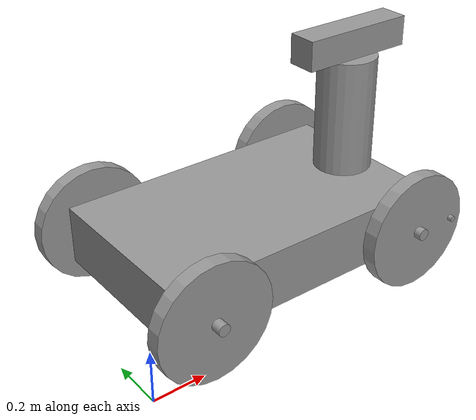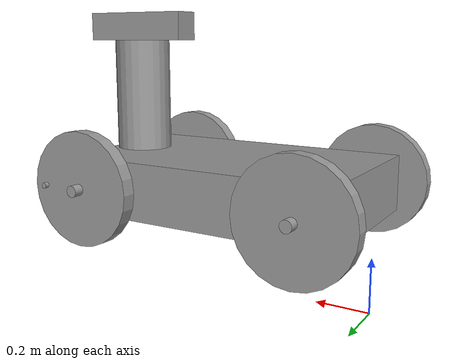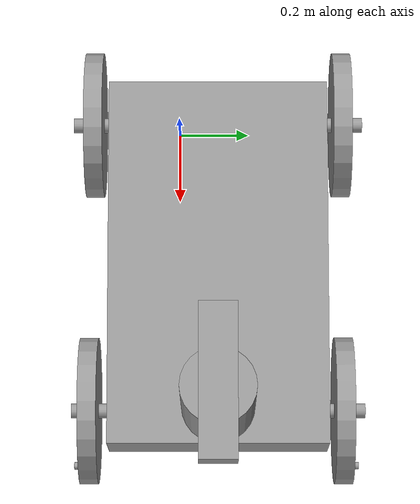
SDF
<?xml version='1.0'?>
<sdf version='1.6'>
  <model name='wheel_2x2'>
    <link name='link_0'>
      <inertial>
        <mass>10</mass>
        <inertia>
          <ixx>0.333333</ixx>
          <ixy>0</ixy>
          <ixz>0</ixz>
          <iyy>0.866667</iyy>
          <iyz>0</iyz>
          <izz>1.13333</izz>
        </inertia>
        <pose frame=''>0 0 0 0 -0 0</pose>
      </inertial>
      <pose frame=''>0.477804 0.110504 0.430964 0 -0 0</pose>
      <gravity>1</gravity>
      <self_collide>0</self_collide>
      <kinematic>0</kinematic>
      <enable_wind>0</enable_wind>
      <visual name='visual'>
        <pose frame=''>0 0 0 0 -0 0</pose>
        <geometry>
          <box>
            <size>1 0.6 0.2</size>
          </box>
        </geometry>
        <material>
          <lighting>1</lighting>
          <script>
            <uri>file://media/materials/scripts/gazebo.material</uri>
            <name>Gazebo/Grey</name>
          </script>
          <shader type='vertex'>
            <normal_map>__default__</normal_map>
          </shader>
          <ambient>0.3 0.3 0.3 1</ambient>
          <diffuse>0.7 0.7 0.7 1</diffuse>
          <specular>0.01 0.01 0.01 1</specular>
          <emissive>0 0 0 1</emissive>
        </material>
        <transparency>0</transparency>
        <cast_shadows>1</cast_shadows>
      </visual>
      <collision name='collision'>
        <laser_retro>0</laser_retro>
        <max_contacts>10</max_contacts>
        <pose frame=''>0 0 0 0 -0 0</pose>
        <geometry>
          <box>
            <size>1 0.6 0.2</size>
          </box>
        </geometry>
        <surface>
          <friction>
            <ode>
              <mu>1</mu>
              <mu2>1</mu2>
              <fdir1>0 0 0</fdir1>
              <slip1>0</slip1>
              <slip2>0</slip2>
            </ode>
            <torsional>
              <coefficient>1</coefficient>
              <patch_radius>0</patch_radius>
              <surface_radius>0</surface_radius>
              <use_patch_radius>1</use_patch_radius>
              <ode>
                <slip>0</slip>
              </ode>
            </torsional>
          </friction>
          <bounce>
            <restitution_coefficient>0</restitution_coefficient>
            <threshold>1e+06</threshold>
          </bounce>
          <contact>
            <collide_without_contact>0</collide_without_contact>
            <collide_without_contact_bitmask>1</collide_without_contact_bitmask>
            <collide_bitmask>1</collide_bitmask>
            <ode>
              <soft_cfm>0</soft_cfm>
              <soft_erp>0.2</soft_erp>
              <kp>1e+13</kp>
              <kd>1</kd>
              <max_vel>0.01</max_vel>
              <min_depth>0</min_depth>
            </ode>
            <bullet>
              <split_impulse>1</split_impulse>
              <split_impulse_penetration_threshold>-0.01</split_impulse_penetration_threshold>
              <soft_cfm>0</soft_cfm>
              <soft_erp>0.2</soft_erp>
              <kp>1e+13</kp>
              <kd>1</kd>
            </bullet>
          </contact>
        </surface>
      </collision>
    </link>
    <link name='link_2'>
      <inertial>
        <mass>1</mass>
        <inertia>
          <ixx>0.145833</ixx>
          <ixy>0</ixy>
          <ixz>0</ixz>
          <iyy>0.145833</iyy>
          <iyz>0</iyz>
          <izz>0.125</izz>
        </inertia>
        <pose frame=''>0 0 0 0 -0 0</pose>
      </inertial>
      <pose frame=''>0.877804 0.110504 0.730964 0 -0 0</pose>
      <gravity>1</gravity>
      <self_collide>0</self_collide>
      <kinematic>0</kinematic>
      <enable_wind>0</enable_wind>
      <visual name='visual'>
        <pose frame=''>0 0 0 0 -0 0</pose>
        <geometry>
          <cylinder>
            <radius>0.1</radius>
            <length>0.4</length>
          </cylinder>
        </geometry>
        <material>
          <lighting>1</lighting>
          <script>
            <uri>file://media/materials/scripts/gazebo.material</uri>
            <name>Gazebo/Grey</name>
          </script>
          <shader type='vertex'>
            <normal_map>__default__</normal_map>
          </shader>
          <ambient>0.3 0.3 0.3 1</ambient>
          <diffuse>0.7 0.7 0.7 1</diffuse>
          <specular>0.01 0.01 0.01 1</specular>
          <emissive>0 0 0 1</emissive>
        </material>
        <transparency>0</transparency>
        <cast_shadows>1</cast_shadows>
      </visual>
      <collision name='collision'>
        <laser_retro>0</laser_retro>
        <max_contacts>10</max_contacts>
        <pose frame=''>0 0 0 0 -0 0</pose>
        <geometry>
          <cylinder>
            <radius>0.1</radius>
            <length>0.4</length>
          </cylinder>
        </geometry>
        <surface>
          <friction>
            <ode>
              <mu>1</mu>
              <mu2>1</mu2>
              <fdir1>0 0 0</fdir1>
              <slip1>0</slip1>
              <slip2>0</slip2>
            </ode>
            <torsional>
              <coefficient>1</coefficient>
              <patch_radius>0</patch_radius>
              <surface_radius>0</surface_radius>
              <use_patch_radius>1</use_patch_radius>
              <ode>
                <slip>0</slip>
              </ode>
            </torsional>
          </friction>
          <bounce>
            <restitution_coefficient>0</restitution_coefficient>
            <threshold>1e+06</threshold>
          </bounce>
          <contact>
            <collide_without_contact>0</collide_without_contact>
            <collide_without_contact_bitmask>1</collide_without_contact_bitmask>
            <collide_bitmask>1</collide_bitmask>
            <ode>
              <soft_cfm>0</soft_cfm>
              <soft_erp>0.2</soft_erp>
              <kp>1e+13</kp>
              <kd>1</kd>
              <max_vel>0.01</max_vel>
              <min_depth>0</min_depth>
            </ode>
            <bullet>
              <split_impulse>1</split_impulse>
              <split_impulse_penetration_threshold>-0.01</split_impulse_penetration_threshold>
              <soft_cfm>0</soft_cfm>
              <soft_erp>0.2</soft_erp>
              <kp>1e+13</kp>
              <kd>1</kd>
            </bullet>
          </contact>
        </surface>
      </collision>
    </link>
    <link name='link_3'>
      <inertial>
        <mass>0.2</mass>
        <inertia>
          <ixx>0.00033333</ixx>
          <ixy>0</ixy>
          <ixz>0</ixz>
          <iyy>0.00283333</iyy>
          <iyz>0</iyz>
          <izz>0.00283333</izz>
        </inertia>
        <pose frame=''>0 0 0 0 -0 0</pose>
      </inertial>
      <pose frame=''>0.877804 0.110504 0.980964 0 -0 0</pose>
      <gravity>1</gravity>
      <self_collide>0</self_collide>
      <kinematic>0</kinematic>
      <enable_wind>0</enable_wind>
      <visual name='visual'>
        <pose frame=''>0 0 0 0 -0 0</pose>
        <geometry>
          <box>
            <size>0.4 0.1 0.1</size>
          </box>
        </geometry>
        <material>
          <lighting>1</lighting>
          <script>
            <uri>file://media/materials/scripts/gazebo.material</uri>
            <name>Gazebo/Grey</name>
          </script>
          <shader type='vertex'>
            <normal_map>__default__</normal_map>
          </shader>
          <ambient>0.3 0.3 0.3 1</ambient>
          <diffuse>0.7 0.7 0.7 1</diffuse>
          <specular>0.01 0.01 0.01 1</specular>
          <emissive>0 0 0 1</emissive>
        </material>
        <transparency>0</transparency>
        <cast_shadows>1</cast_shadows>
      </visual>
      <collision name='collision'>
        <laser_retro>0</laser_retro>
        <max_contacts>10</max_contacts>
        <pose frame=''>0 0 0 0 -0 0</pose>
        <geometry>
          <box>
            <size>0.4 0.1 0.1</size>
          </box>
        </geometry>
        <surface>
          <friction>
            <ode>
              <mu>1</mu>
              <mu2>1</mu2>
              <fdir1>0 0 0</fdir1>
              <slip1>0</slip1>
              <slip2>0</slip2>
            </ode>
            <torsional>
              <coefficient>1</coefficient>
              <patch_radius>0</patch_radius>
              <surface_radius>0</surface_radius>
              <use_patch_radius>1</use_patch_radius>
              <ode>
                <slip>0</slip>
              </ode>
            </torsional>
          </friction>
          <bounce>
            <restitution_coefficient>0</restitution_coefficient>
            <threshold>1e+06</threshold>
          </bounce>
          <contact>
            <collide_without_contact>0</collide_without_contact>
            <collide_without_contact_bitmask>1</collide_without_contact_bitmask>
            <collide_bitmask>1</collide_bitmask>
            <ode>
              <soft_cfm>0</soft_cfm>
              <soft_erp>0.2</soft_erp>
              <kp>1e+13</kp>
              <kd>1</kd>
              <max_vel>0.01</max_vel>
              <min_depth>0</min_depth>
            </ode>
            <bullet>
              <split_impulse>1</split_impulse>
              <split_impulse_penetration_threshold>-0.01</split_impulse_penetration_threshold>
              <soft_cfm>0</soft_cfm>
              <soft_erp>0.2</soft_erp>
              <kp>1e+13</kp>
              <kd>1</kd>
            </bullet>
          </contact>
        </surface>
      </collision>
    </link>
    <link name='link_4'>
      <inertial>
        <mass>0.1</mass>
        <inertia>
          <ixx>0.00034333</ixx>
          <ixy>0</ixy>
          <ixz>0</ixz>
          <iyy>0.00034333</iyy>
          <iyz>0</iyz>
          <izz>2e-05</izz>
        </inertia>
        <pose frame=''>0 0 0 0 -0 0</pose>
      </inertial>
      <pose frame=''>0.877804 -0.189495 0.430964 1.5708 -0 0</pose>
      <gravity>1</gravity>
      <self_collide>0</self_collide>
      <kinematic>0</kinematic>
      <enable_wind>0</enable_wind>
      <visual name='visual'>
        <pose frame=''>0 0 0 0 -0 0</pose>
        <geometry>
          <cylinder>
            <radius>0.02</radius>
            <length>0.2</length>
          </cylinder>
        </geometry>
        <material>
          <lighting>1</lighting>
          <script>
            <uri>file://media/materials/scripts/gazebo.material</uri>
            <name>Gazebo/Grey</name>
          </script>
          <shader type='vertex'>
            <normal_map>__default__</normal_map>
          </shader>
          <ambient>0.3 0.3 0.3 1</ambient>
          <diffuse>0.7 0.7 0.7 1</diffuse>
          <specular>0.01 0.01 0.01 1</specular>
          <emissive>0 0 0 1</emissive>
        </material>
        <transparency>0</transparency>
        <cast_shadows>1</cast_shadows>
      </visual>
      <collision name='collision'>
        <laser_retro>0</laser_retro>
        <max_contacts>10</max_contacts>
        <pose frame=''>0 0 0 0 -0 0</pose>
        <geometry>
          <cylinder>
            <radius>0.02</radius>
            <length>0.2</length>
          </cylinder>
        </geometry>
        <surface>
          <friction>
            <ode>
              <mu>1</mu>
              <mu2>1</mu2>
              <fdir1>0 0 0</fdir1>
              <slip1>0</slip1>
              <slip2>0</slip2>
            </ode>
            <torsional>
              <coefficient>1</coefficient>
              <patch_radius>0</patch_radius>
              <surface_radius>0</surface_radius>
              <use_patch_radius>1</use_patch_radius>
              <ode>
                <slip>0</slip>
              </ode>
            </torsional>
          </friction>
          <bounce>
            <restitution_coefficient>0</restitution_coefficient>
            <threshold>1e+06</threshold>
          </bounce>
          <contact>
            <collide_without_contact>0</collide_without_contact>
            <collide_without_contact_bitmask>1</collide_without_contact_bitmask>
            <collide_bitmask>1</collide_bitmask>
            <ode>
              <soft_cfm>0</soft_cfm>
              <soft_erp>0.2</soft_erp>
              <kp>1e+13</kp>
              <kd>1</kd>
              <max_vel>0.01</max_vel>
              <min_depth>0</min_depth>
            </ode>
            <bullet>
              <split_impulse>1</split_impulse>
              <split_impulse_penetration_threshold>-0.01</split_impulse_penetration_threshold>
              <soft_cfm>0</soft_cfm>
              <soft_erp>0.2</soft_erp>
              <kp>1e+13</kp>
              <kd>1</kd>
            </bullet>
          </contact>
        </surface>
      </collision>
    </link>
    <link name='link_4_clone'>
      <inertial>
        <mass>0.1</mass>
        <inertia>
          <ixx>0.00034333</ixx>
          <ixy>0</ixy>
          <ixz>0</ixz>
          <iyy>0.00034333</iyy>
          <iyz>0</iyz>
          <izz>2e-05</izz>
        </inertia>
        <pose frame=''>0 0 0 0 -0 0</pose>
      </inertial>
      <pose frame=''>0.877804 0.410504 0.430964 -1.5708 0 0</pose>
      <gravity>1</gravity>
      <self_collide>0</self_collide>
      <kinematic>0</kinematic>
      <enable_wind>0</enable_wind>
      <visual name='visual'>
        <pose frame=''>0 0 0 0 -0 0</pose>
        <geometry>
          <cylinder>
            <radius>0.02</radius>
            <length>0.2</length>
          </cylinder>
        </geometry>
        <material>
          <lighting>1</lighting>
          <script>
            <uri>file://media/materials/scripts/gazebo.material</uri>
            <name>Gazebo/Grey</name>
          </script>
          <shader type='vertex'>
            <normal_map>__default__</normal_map>
          </shader>
          <ambient>0.3 0.3 0.3 1</ambient>
          <diffuse>0.7 0.7 0.7 1</diffuse>
          <specular>0.01 0.01 0.01 1</specular>
          <emissive>0 0 0 1</emissive>
        </material>
        <transparency>0</transparency>
        <cast_shadows>1</cast_shadows>
      </visual>
      <collision name='collision'>
        <laser_retro>0</laser_retro>
        <max_contacts>10</max_contacts>
        <pose frame=''>0 0 0 0 -0 0</pose>
        <geometry>
          <cylinder>
            <radius>0.02</radius>
            <length>0.2</length>
          </cylinder>
        </geometry>
        <surface>
          <friction>
            <ode>
              <mu>1</mu>
              <mu2>1</mu2>
              <fdir1>0 0 0</fdir1>
              <slip1>0</slip1>
              <slip2>0</slip2>
            </ode>
            <torsional>
              <coefficient>1</coefficient>
              <patch_radius>0</patch_radius>
              <surface_radius>0</surface_radius>
              <use_patch_radius>1</use_patch_radius>
              <ode>
                <slip>0</slip>
              </ode>
            </torsional>
          </friction>
          <bounce>
            <restitution_coefficient>0</restitution_coefficient>
            <threshold>1e+06</threshold>
          </bounce>
          <contact>
            <collide_without_contact>0</collide_without_contact>
            <collide_without_contact_bitmask>1</collide_without_contact_bitmask>
            <collide_bitmask>1</collide_bitmask>
            <ode>
              <soft_cfm>0</soft_cfm>
              <soft_erp>0.2</soft_erp>
              <kp>1e+13</kp>
              <kd>1</kd>
              <max_vel>0.01</max_vel>
              <min_depth>0</min_depth>
            </ode>
            <bullet>
              <split_impulse>1</split_impulse>
              <split_impulse_penetration_threshold>-0.01</split_impulse_penetration_threshold>
              <soft_cfm>0</soft_cfm>
              <soft_erp>0.2</soft_erp>
              <kp>1e+13</kp>
              <kd>1</kd>
            </bullet>
          </contact>
        </surface>
      </collision>
    </link>
    <link name='link_4_clone_0'>
      <inertial>
        <mass>0.1</mass>
        <inertia>
          <ixx>0.00034333</ixx>
          <ixy>0</ixy>
          <ixz>0</ixz>
          <iyy>0.00034333</iyy>
          <iyz>0</iyz>
          <izz>2e-05</izz>
        </inertia>
        <pose frame=''>0 0 0 0 -0 0</pose>
      </inertial>
      <pose frame=''>0.077804 -0.189496 0.430964 1.5708 -0 0</pose>
      <gravity>1</gravity>
      <self_collide>0</self_collide>
      <kinematic>0</kinematic>
      <enable_wind>0</enable_wind>
      <visual name='visual'>
        <pose frame=''>0 0 0 0 -0 0</pose>
        <geometry>
          <cylinder>
            <radius>0.02</radius>
            <length>0.2</length>
          </cylinder>
        </geometry>
        <material>
          <lighting>1</lighting>
          <script>
            <uri>file://media/materials/scripts/gazebo.material</uri>
            <name>Gazebo/Grey</name>
          </script>
          <shader type='vertex'>
            <normal_map>__default__</normal_map>
          </shader>
          <ambient>0.3 0.3 0.3 1</ambient>
          <diffuse>0.7 0.7 0.7 1</diffuse>
          <specular>0.01 0.01 0.01 1</specular>
          <emissive>0 0 0 1</emissive>
        </material>
        <transparency>0</transparency>
        <cast_shadows>1</cast_shadows>
      </visual>
      <collision name='collision'>
        <laser_retro>0</laser_retro>
        <max_contacts>10</max_contacts>
        <pose frame=''>0 0 0 0 -0 0</pose>
        <geometry>
          <cylinder>
            <radius>0.02</radius>
            <length>0.2</length>
          </cylinder>
        </geometry>
        <surface>
          <friction>
            <ode>
              <mu>1</mu>
              <mu2>1</mu2>
              <fdir1>0 0 0</fdir1>
              <slip1>0</slip1>
              <slip2>0</slip2>
            </ode>
            <torsional>
              <coefficient>1</coefficient>
              <patch_radius>0</patch_radius>
              <surface_radius>0</surface_radius>
              <use_patch_radius>1</use_patch_radius>
              <ode>
                <slip>0</slip>
              </ode>
            </torsional>
          </friction>
          <bounce>
            <restitution_coefficient>0</restitution_coefficient>
            <threshold>1e+06</threshold>
          </bounce>
          <contact>
            <collide_without_contact>0</collide_without_contact>
            <collide_without_contact_bitmask>1</collide_without_contact_bitmask>
            <collide_bitmask>1</collide_bitmask>
            <ode>
              <soft_cfm>0</soft_cfm>
              <soft_erp>0.2</soft_erp>
              <kp>1e+13</kp>
              <kd>1</kd>
              <max_vel>0.01</max_vel>
              <min_depth>0</min_depth>
            </ode>
            <bullet>
              <split_impulse>1</split_impulse>
              <split_impulse_penetration_threshold>-0.01</split_impulse_penetration_threshold>
              <soft_cfm>0</soft_cfm>
              <soft_erp>0.2</soft_erp>
              <kp>1e+13</kp>
              <kd>1</kd>
            </bullet>
          </contact>
        </surface>
      </collision>
    </link>
    <link name='link_4_clone_clone'>
      <inertial>
        <mass>0.1</mass>
        <inertia>
          <ixx>0.00034333</ixx>
          <ixy>0</ixy>
          <ixz>0</ixz>
          <iyy>0.00034333</iyy>
          <iyz>0</iyz>
          <izz>2e-05</izz>
        </inertia>
        <pose frame=''>0 0 0 0 -0 0</pose>
      </inertial>
      <pose frame=''>0.077804 0.410504 0.430964 -1.5708 0 0</pose>
      <gravity>1</gravity>
      <self_collide>0</self_collide>
      <kinematic>0</kinematic>
      <enable_wind>0</enable_wind>
      <visual name='visual'>
        <pose frame=''>0 0 0 0 -0 0</pose>
        <geometry>
          <cylinder>
            <radius>0.02</radius>
            <length>0.2</length>
          </cylinder>
        </geometry>
        <material>
          <lighting>1</lighting>
          <script>
            <uri>file://media/materials/scripts/gazebo.material</uri>
            <name>Gazebo/Grey</name>
          </script>
          <shader type='vertex'>
            <normal_map>__default__</normal_map>
          </shader>
          <ambient>0.3 0.3 0.3 1</ambient>
          <diffuse>0.7 0.7 0.7 1</diffuse>
          <specular>0.01 0.01 0.01 1</specular>
          <emissive>0 0 0 1</emissive>
        </material>
        <transparency>0</transparency>
        <cast_shadows>1</cast_shadows>
      </visual>
      <collision name='collision'>
        <laser_retro>0</laser_retro>
        <max_contacts>10</max_contacts>
        <pose frame=''>0 0 0 0 -0 0</pose>
        <geometry>
          <cylinder>
            <radius>0.02</radius>
            <length>0.2</length>
          </cylinder>
        </geometry>
        <surface>
          <friction>
            <ode>
              <mu>1</mu>
              <mu2>1</mu2>
              <fdir1>0 0 0</fdir1>
              <slip1>0</slip1>
              <slip2>0</slip2>
            </ode>
            <torsional>
              <coefficient>1</coefficient>
              <patch_radius>0</patch_radius>
              <surface_radius>0</surface_radius>
              <use_patch_radius>1</use_patch_radius>
              <ode>
                <slip>0</slip>
              </ode>
            </torsional>
          </friction>
          <bounce>
            <restitution_coefficient>0</restitution_coefficient>
            <threshold>1e+06</threshold>
          </bounce>
          <contact>
            <collide_without_contact>0</collide_without_contact>
            <collide_without_contact_bitmask>1</collide_without_contact_bitmask>
            <collide_bitmask>1</collide_bitmask>
            <ode>
              <soft_cfm>0</soft_cfm>
              <soft_erp>0.2</soft_erp>
              <kp>1e+13</kp>
              <kd>1</kd>
              <max_vel>0.01</max_vel>
              <min_depth>0</min_depth>
            </ode>
            <bullet>
              <split_impulse>1</split_impulse>
              <split_impulse_penetration_threshold>-0.01</split_impulse_penetration_threshold>
              <soft_cfm>0</soft_cfm>
              <soft_erp>0.2</soft_erp>
              <kp>1e+13</kp>
              <kd>1</kd>
            </bullet>
          </contact>
        </surface>
      </collision>
    </link>
    <link name='link_5'>
      <inertial>
        <mass>0.5</mass>
        <inertia>
          <ixx>0.00510417</ixx>
          <ixy>0</ixy>
          <ixz>0</ixz>
          <iyy>0.00510417</iyy>
          <iyz>0</iyz>
          <izz>0.01</izz>
        </inertia>
        <pose frame=''>0 0 0 0 -0 0</pose>
      </inertial>
      <pose frame=''>0.877804 -0.239495 0.430964 1.5708 -0 0</pose>
      <gravity>1</gravity>
      <self_collide>0</self_collide>
      <kinematic>0</kinematic>
      <enable_wind>0</enable_wind>
      <visual name='visual'>
        <pose frame=''>0 0 0 0 -0 0</pose>
        <geometry>
          <cylinder>
            <radius>0.2</radius>
            <length>0.05</length>
          </cylinder>
        </geometry>
        <material>
          <lighting>1</lighting>
          <script>
            <uri>file://media/materials/scripts/gazebo.material</uri>
            <name>Gazebo/Grey</name>
          </script>
          <shader type='vertex'>
            <normal_map>__default__</normal_map>
          </shader>
          <ambient>0.3 0.3 0.3 1</ambient>
          <diffuse>0.7 0.7 0.7 1</diffuse>
          <specular>0.01 0.01 0.01 1</specular>
          <emissive>0 0 0 1</emissive>
        </material>
        <transparency>0</transparency>
        <cast_shadows>1</cast_shadows>
      </visual>
      <collision name='collision'>
        <laser_retro>0</laser_retro>
        <max_contacts>10</max_contacts>
        <pose frame=''>0 0 0 0 -0 0</pose>
        <geometry>
          <cylinder>
            <radius>0.2</radius>
            <length>0.05</length>
          </cylinder>
        </geometry>
        <surface>
          <friction>
            <ode>
              <mu>1</mu>
              <mu2>1</mu2>
              <fdir1>0 0 0</fdir1>
              <slip1>0</slip1>
              <slip2>0</slip2>
            </ode>
            <torsional>
              <coefficient>1</coefficient>
              <patch_radius>0</patch_radius>
              <surface_radius>0</surface_radius>
              <use_patch_radius>1</use_patch_radius>
              <ode>
                <slip>0</slip>
              </ode>
            </torsional>
          </friction>
          <bounce>
            <restitution_coefficient>0</restitution_coefficient>
            <threshold>1e+06</threshold>
          </bounce>
          <contact>
            <collide_without_contact>0</collide_without_contact>
            <collide_without_contact_bitmask>1</collide_without_contact_bitmask>
            <collide_bitmask>1</collide_bitmask>
            <ode>
              <soft_cfm>0</soft_cfm>
              <soft_erp>0.2</soft_erp>
              <kp>1e+13</kp>
              <kd>1</kd>
              <max_vel>0.01</max_vel>
              <min_depth>0</min_depth>
            </ode>
            <bullet>
              <split_impulse>1</split_impulse>
              <split_impulse_penetration_threshold>-0.01</split_impulse_penetration_threshold>
              <soft_cfm>0</soft_cfm>
              <soft_erp>0.2</soft_erp>
              <kp>1e+13</kp>
              <kd>1</kd>
            </bullet>
          </contact>
        </surface>
      </collision>
    </link>
    <link name='link_5_clone'>
      <inertial>
        <mass>0.5</mass>
        <inertia>
          <ixx>0.00510417</ixx>
          <ixy>0</ixy>
          <ixz>0</ixz>
          <iyy>0.00510417</iyy>
          <iyz>0</iyz>
          <izz>0.01</izz>
        </inertia>
        <pose frame=''>0 0 0 0 -0 0</pose>
      </inertial>
      <pose frame=''>0.077804 -0.229496 0.430964 1.5708 -0 0</pose>
      <gravity>1</gravity>
      <self_collide>0</self_collide>
      <kinematic>0</kinematic>
      <enable_wind>0</enable_wind>
      <visual name='visual'>
        <pose frame=''>0 0 0 0 -0 0</pose>
        <geometry>
          <cylinder>
            <radius>0.2</radius>
            <length>0.05</length>
          </cylinder>
        </geometry>
        <material>
          <lighting>1</lighting>
          <script>
            <uri>file://media/materials/scripts/gazebo.material</uri>
            <name>Gazebo/Grey</name>
          </script>
          <shader type='vertex'>
            <normal_map>__default__</normal_map>
          </shader>
          <ambient>0.3 0.3 0.3 1</ambient>
          <diffuse>0.7 0.7 0.7 1</diffuse>
          <specular>0.01 0.01 0.01 1</specular>
          <emissive>0 0 0 1</emissive>
        </material>
        <transparency>0</transparency>
        <cast_shadows>1</cast_shadows>
      </visual>
      <collision name='collision'>
        <laser_retro>0</laser_retro>
        <max_contacts>10</max_contacts>
        <pose frame=''>0 0 0 0 -0 0</pose>
        <geometry>
          <cylinder>
            <radius>0.2</radius>
            <length>0.05</length>
          </cylinder>
        </geometry>
        <surface>
          <friction>
            <ode>
              <mu>1</mu>
              <mu2>1</mu2>
              <fdir1>0 0 0</fdir1>
              <slip1>0</slip1>
              <slip2>0</slip2>
            </ode>
            <torsional>
              <coefficient>1</coefficient>
              <patch_radius>0</patch_radius>
              <surface_radius>0</surface_radius>
              <use_patch_radius>1</use_patch_radius>
              <ode>
                <slip>0</slip>
              </ode>
            </torsional>
          </friction>
          <bounce>
            <restitution_coefficient>0</restitution_coefficient>
            <threshold>1e+06</threshold>
          </bounce>
          <contact>
            <collide_without_contact>0</collide_without_contact>
            <collide_without_contact_bitmask>1</collide_without_contact_bitmask>
            <collide_bitmask>1</collide_bitmask>
            <ode>
              <soft_cfm>0</soft_cfm>
              <soft_erp>0.2</soft_erp>
              <kp>1e+13</kp>
              <kd>1</kd>
              <max_vel>0.01</max_vel>
              <min_depth>0</min_depth>
            </ode>
            <bullet>
              <split_impulse>1</split_impulse>
              <split_impulse_penetration_threshold>-0.01</split_impulse_penetration_threshold>
              <soft_cfm>0</soft_cfm>
              <soft_erp>0.2</soft_erp>
              <kp>1e+13</kp>
              <kd>1</kd>
            </bullet>
          </contact>
        </surface>
      </collision>
    </link>
    <link name='link_5_clone_0'>
      <inertial>
        <mass>0.5</mass>
        <inertia>
          <ixx>0.00510417</ixx>
          <ixy>0</ixy>
          <ixz>0</ixz>
          <iyy>0.00510417</iyy>
          <iyz>0</iyz>
          <izz>0.01</izz>
        </inertia>
        <pose frame=''>0 0 0 0 -0 0</pose>
      </inertial>
      <pose frame=''>0.877804 0.450504 0.430964 -1.5708 0 0</pose>
      <gravity>1</gravity>
      <self_collide>0</self_collide>
      <kinematic>0</kinematic>
      <enable_wind>0</enable_wind>
      <visual name='visual'>
        <pose frame=''>0 0 0 0 -0 0</pose>
        <geometry>
          <cylinder>
            <radius>0.2</radius>
            <length>0.05</length>
          </cylinder>
        </geometry>
        <material>
          <lighting>1</lighting>
          <script>
            <uri>file://media/materials/scripts/gazebo.material</uri>
            <name>Gazebo/Grey</name>
          </script>
          <shader type='vertex'>
            <normal_map>__default__</normal_map>
          </shader>
          <ambient>0.3 0.3 0.3 1</ambient>
          <diffuse>0.7 0.7 0.7 1</diffuse>
          <specular>0.01 0.01 0.01 1</specular>
          <emissive>0 0 0 1</emissive>
        </material>
        <transparency>0</transparency>
        <cast_shadows>1</cast_shadows>
      </visual>
      <collision name='collision'>
        <laser_retro>0</laser_retro>
        <max_contacts>10</max_contacts>
        <pose frame=''>0 0 0 0 -0 0</pose>
        <geometry>
          <cylinder>
            <radius>0.2</radius>
            <length>0.05</length>
          </cylinder>
        </geometry>
        <surface>
          <friction>
            <ode>
              <mu>1</mu>
              <mu2>1</mu2>
              <fdir1>0 0 0</fdir1>
              <slip1>0</slip1>
              <slip2>0</slip2>
            </ode>
            <torsional>
              <coefficient>1</coefficient>
              <patch_radius>0</patch_radius>
              <surface_radius>0</surface_radius>
              <use_patch_radius>1</use_patch_radius>
              <ode>
                <slip>0</slip>
              </ode>
            </torsional>
          </friction>
          <bounce>
            <restitution_coefficient>0</restitution_coefficient>
            <threshold>1e+06</threshold>
          </bounce>
          <contact>
            <collide_without_contact>0</collide_without_contact>
            <collide_without_contact_bitmask>1</collide_without_contact_bitmask>
            <collide_bitmask>1</collide_bitmask>
            <ode>
              <soft_cfm>0</soft_cfm>
              <soft_erp>0.2</soft_erp>
              <kp>1e+13</kp>
              <kd>1</kd>
              <max_vel>0.01</max_vel>
              <min_depth>0</min_depth>
            </ode>
            <bullet>
              <split_impulse>1</split_impulse>
              <split_impulse_penetration_threshold>-0.01</split_impulse_penetration_threshold>
              <soft_cfm>0</soft_cfm>
              <soft_erp>0.2</soft_erp>
              <kp>1e+13</kp>
              <kd>1</kd>
            </bullet>
          </contact>
        </surface>
      </collision>
    </link>
    <link name='link_5_clone_0_clone'>
      <inertial>
        <mass>0.5</mass>
        <inertia>
          <ixx>0.00510417</ixx>
          <ixy>0</ixy>
          <ixz>0</ixz>
          <iyy>0.00510417</iyy>
          <iyz>0</iyz>
          <izz>0.01</izz>
        </inertia>
        <pose frame=''>0 0 0 0 -0 0</pose>
      </inertial>
      <pose frame=''>0.077804 0.450504 0.430964 -1.5708 0 0</pose>
      <gravity>1</gravity>
      <self_collide>0</self_collide>
      <kinematic>0</kinematic>
      <enable_wind>0</enable_wind>
      <visual name='visual'>
        <pose frame=''>0 0 0 0 -0 0</pose>
        <geometry>
          <cylinder>
            <radius>0.2</radius>
            <length>0.05</length>
          </cylinder>
        </geometry>
        <material>
          <lighting>1</lighting>
          <script>
            <uri>file://media/materials/scripts/gazebo.material</uri>
            <name>Gazebo/Grey</name>
          </script>
          <shader type='vertex'>
            <normal_map>__default__</normal_map>
          </shader>
          <ambient>0.3 0.3 0.3 1</ambient>
          <diffuse>0.7 0.7 0.7 1</diffuse>
          <specular>0.01 0.01 0.01 1</specular>
          <emissive>0 0 0 1</emissive>
        </material>
        <transparency>0</transparency>
        <cast_shadows>1</cast_shadows>
      </visual>
      <collision name='collision'>
        <laser_retro>0</laser_retro>
        <max_contacts>10</max_contacts>
        <pose frame=''>0 0 0 0 -0 0</pose>
        <geometry>
          <cylinder>
            <radius>0.2</radius>
            <length>0.05</length>
          </cylinder>
        </geometry>
        <surface>
          <friction>
            <ode>
              <mu>1</mu>
              <mu2>1</mu2>
              <fdir1>0 0 0</fdir1>
              <slip1>0</slip1>
              <slip2>0</slip2>
            </ode>
            <torsional>
              <coefficient>1</coefficient>
              <patch_radius>0</patch_radius>
              <surface_radius>0</surface_radius>
              <use_patch_radius>1</use_patch_radius>
              <ode>
                <slip>0</slip>
              </ode>
            </torsional>
          </friction>
          <bounce>
            <restitution_coefficient>0</restitution_coefficient>
            <threshold>1e+06</threshold>
          </bounce>
          <contact>
            <collide_without_contact>0</collide_without_contact>
            <collide_without_contact_bitmask>1</collide_without_contact_bitmask>
            <collide_bitmask>1</collide_bitmask>
            <ode>
              <soft_cfm>0</soft_cfm>
              <soft_erp>0.2</soft_erp>
              <kp>1e+13</kp>
              <kd>1</kd>
              <max_vel>0.01</max_vel>
              <min_depth>0</min_depth>
            </ode>
            <bullet>
              <split_impulse>1</split_impulse>
              <split_impulse_penetration_threshold>-0.01</split_impulse_penetration_threshold>
              <soft_cfm>0</soft_cfm>
              <soft_erp>0.2</soft_erp>
              <kp>1e+13</kp>
              <kd>1</kd>
            </bullet>
          </contact>
        </surface>
      </collision>
    </link>
    <link name='link_6'>
      <inertial>
        <mass>0.1</mass>
        <inertia>
          <ixx>5.83e-06</ixx>
          <ixy>0</ixy>
          <ixz>0</ixz>
          <iyy>5.83e-06</iyy>
          <iyz>0</iyz>
          <izz>5e-06</izz>
        </inertia>
        <pose frame=''>0 0 0 0 -0 0</pose>
      </inertial>
      <pose frame=''>1.0278 -0.269495 0.430964 1.5708 -0 0</pose>
      <gravity>1</gravity>
      <self_collide>0</self_collide>
      <kinematic>0</kinematic>
      <enable_wind>0</enable_wind>
      <visual name='visual'>
        <pose frame=''>0 0 0 0 -0 0</pose>
        <geometry>
          <cylinder>
            <radius>0.01</radius>
            <length>0.02</length>
          </cylinder>
        </geometry>
        <material>
          <lighting>1</lighting>
          <script>
            <uri>file://media/materials/scripts/gazebo.material</uri>
            <name>Gazebo/Grey</name>
          </script>
          <shader type='vertex'>
            <normal_map>__default__</normal_map>
          </shader>
          <ambient>0.3 0.3 0.3 1</ambient>
          <diffuse>0.7 0.7 0.7 1</diffuse>
          <specular>0.01 0.01 0.01 1</specular>
          <emissive>0 0 0 1</emissive>
        </material>
        <transparency>0</transparency>
        <cast_shadows>1</cast_shadows>
      </visual>
      <collision name='collision'>
        <laser_retro>0</laser_retro>
        <max_contacts>10</max_contacts>
        <pose frame=''>0 0 0 0 -0 0</pose>
        <geometry>
          <cylinder>
            <radius>0.01</radius>
            <length>0.02</length>
          </cylinder>
        </geometry>
        <surface>
          <friction>
            <ode>
              <mu>1</mu>
              <mu2>1</mu2>
              <fdir1>0 0 0</fdir1>
              <slip1>0</slip1>
              <slip2>0</slip2>
            </ode>
            <torsional>
              <coefficient>1</coefficient>
              <patch_radius>0</patch_radius>
              <surface_radius>0</surface_radius>
              <use_patch_radius>1</use_patch_radius>
              <ode>
                <slip>0</slip>
              </ode>
            </torsional>
          </friction>
          <bounce>
            <restitution_coefficient>0</restitution_coefficient>
            <threshold>1e+06</threshold>
          </bounce>
          <contact>
            <collide_without_contact>0</collide_without_contact>
            <collide_without_contact_bitmask>1</collide_without_contact_bitmask>
            <collide_bitmask>1</collide_bitmask>
            <ode>
              <soft_cfm>0</soft_cfm>
              <soft_erp>0.2</soft_erp>
              <kp>1e+13</kp>
              <kd>1</kd>
              <max_vel>0.01</max_vel>
              <min_depth>0</min_depth>
            </ode>
            <bullet>
              <split_impulse>1</split_impulse>
              <split_impulse_penetration_threshold>-0.01</split_impulse_penetration_threshold>
              <soft_cfm>0</soft_cfm>
              <soft_erp>0.2</soft_erp>
              <kp>1e+13</kp>
              <kd>1</kd>
            </bullet>
          </contact>
        </surface>
      </collision>
    </link>
    <link name='link_6_clone'>
      <inertial>
        <mass>0.1</mass>
        <inertia>
          <ixx>5.83e-06</ixx>
          <ixy>0</ixy>
          <ixz>0</ixz>
          <iyy>5.83e-06</iyy>
          <iyz>0</iyz>
          <izz>5e-06</izz>
        </inertia>
        <pose frame=''>0 0 0 0 -0 0</pose>
      </inertial>
      <pose frame=''>1.0278 0.480504 0.430964 -1.5708 0 0</pose>
      <gravity>1</gravity>
      <self_collide>0</self_collide>
      <kinematic>0</kinematic>
      <enable_wind>0</enable_wind>
      <visual name='visual'>
        <pose frame=''>0 0 0 0 -0 0</pose>
        <geometry>
          <cylinder>
            <radius>0.01</radius>
            <length>0.02</length>
          </cylinder>
        </geometry>
        <material>
          <lighting>1</lighting>
          <script>
            <uri>file://media/materials/scripts/gazebo.material</uri>
            <name>Gazebo/Grey</name>
          </script>
          <shader type='vertex'>
            <normal_map>__default__</normal_map>
          </shader>
          <ambient>0.3 0.3 0.3 1</ambient>
          <diffuse>0.7 0.7 0.7 1</diffuse>
          <specular>0.01 0.01 0.01 1</specular>
          <emissive>0 0 0 1</emissive>
        </material>
        <transparency>0</transparency>
        <cast_shadows>1</cast_shadows>
      </visual>
      <collision name='collision'>
        <laser_retro>0</laser_retro>
        <max_contacts>10</max_contacts>
        <pose frame=''>0 0 0 0 -0 0</pose>
        <geometry>
          <cylinder>
            <radius>0.01</radius>
            <length>0.02</length>
          </cylinder>
        </geometry>
        <surface>
          <friction>
            <ode>
              <mu>1</mu>
              <mu2>1</mu2>
              <fdir1>0 0 0</fdir1>
              <slip1>0</slip1>
              <slip2>0</slip2>
            </ode>
            <torsional>
              <coefficient>1</coefficient>
              <patch_radius>0</patch_radius>
              <surface_radius>0</surface_radius>
              <use_patch_radius>1</use_patch_radius>
              <ode>
                <slip>0</slip>
              </ode>
            </torsional>
          </friction>
          <bounce>
            <restitution_coefficient>0</restitution_coefficient>
            <threshold>1e+06</threshold>
          </bounce>
          <contact>
            <collide_without_contact>0</collide_without_contact>
            <collide_without_contact_bitmask>1</collide_without_contact_bitmask>
            <collide_bitmask>1</collide_bitmask>
            <ode>
              <soft_cfm>0</soft_cfm>
              <soft_erp>0.2</soft_erp>
              <kp>1e+13</kp>
              <kd>1</kd>
              <max_vel>0.01</max_vel>
              <min_depth>0</min_depth>
            </ode>
            <bullet>
              <split_impulse>1</split_impulse>
              <split_impulse_penetration_threshold>-0.01</split_impulse_penetration_threshold>
              <soft_cfm>0</soft_cfm>
              <soft_erp>0.2</soft_erp>
              <kp>1e+13</kp>
              <kd>1</kd>
            </bullet>
          </contact>
        </surface>
      </collision>
    </link>
    <joint name='link_0_JOINT_0' type='fixed'>
      <parent>link_0</parent>
      <child>link_2</child>
      <pose frame=''>0 0 0 0 -0 0</pose>
      <physics>
        <ode>
          <limit>
            <cfm>0</cfm>
            <erp>0.2</erp>
          </limit>
          <suspension>
            <cfm>0</cfm>
            <erp>0.2</erp>
          </suspension>
        </ode>
      </physics>
    </joint>
    <joint name='link_0_JOINT_2' type='fixed'>
      <parent>link_0</parent>
      <child>link_4</child>
      <pose frame=''>0 0 0 0 -0 0</pose>
      <physics>
        <ode>
          <limit>
            <cfm>0</cfm>
            <erp>0.2</erp>
          </limit>
          <suspension>
            <cfm>0</cfm>
            <erp>0.2</erp>
          </suspension>
        </ode>
      </physics>
    </joint>
    <joint name='link_0_JOINT_3' type='fixed'>
      <parent>link_0</parent>
      <child>link_4_clone</child>
      <pose frame=''>0 0 0 0 -0 0</pose>
      <physics>
        <ode>
          <limit>
            <cfm>0</cfm>
            <erp>0.2</erp>
          </limit>
          <suspension>
            <cfm>0</cfm>
            <erp>0.2</erp>
          </suspension>
        </ode>
      </physics>
    </joint>
    <joint name='link_0_JOINT_4' type='fixed'>
      <parent>link_0</parent>
      <child>link_4_clone_0</child>
      <pose frame=''>0 0 0 0 -0 0</pose>
      <physics>
        <ode>
          <limit>
            <cfm>0</cfm>
            <erp>0.2</erp>
          </limit>
          <suspension>
            <cfm>0</cfm>
            <erp>0.2</erp>
          </suspension>
        </ode>
      </physics>
    </joint>
    <joint name='link_0_JOINT_5' type='fixed'>
      <parent>link_0</parent>
      <child>link_4_clone_clone</child>
      <pose frame=''>0 0 0 0 -0 0</pose>
      <physics>
        <ode>
          <limit>
            <cfm>0</cfm>
            <erp>0.2</erp>
          </limit>
          <suspension>
            <cfm>0</cfm>
            <erp>0.2</erp>
          </suspension>
        </ode>
      </physics>
    </joint>
    <joint name='link_2_JOINT_1' type='revolute'>
      <parent>link_2</parent>
      <child>link_3</child>
      <pose frame=''>0 0 0 0 -0 0</pose>
      <axis>
        <xyz>0 0 1</xyz>
        <use_parent_model_frame>0</use_parent_model_frame>
        <limit>
          <lower>-1.79769e+308</lower>
          <upper>1.79769e+308</upper>
          <effort>-1</effort>
          <velocity>-1</velocity>
        </limit>
        <dynamics>
          <spring_reference>0</spring_reference>
          <spring_stiffness>0</spring_stiffness>
          <damping>0</damping>
        </dynamics>
      </axis>
      <physics>
        <ode>
          <limit>
            <cfm>0</cfm>
            <erp>0.2</erp>
          </limit>
          <suspension>
            <cfm>0</cfm>
            <erp>0.2</erp>
          </suspension>
        </ode>
      </physics>
    </joint>
    <joint name='link_4_JOINT_6' type='revolute'>
      <parent>link_4</parent>
      <child>link_5</child>
      <pose frame=''>0 0 0 0 -0 0</pose>
      <axis>
        <xyz>0 0 1</xyz>
        <use_parent_model_frame>0</use_parent_model_frame>
        <limit>
          <lower>-1.79769e+308</lower>
          <upper>1.79769e+308</upper>
          <effort>-1</effort>
          <velocity>-1</velocity>
        </limit>
        <dynamics>
          <spring_reference>0</spring_reference>
          <spring_stiffness>0</spring_stiffness>
          <damping>0</damping>
          <friction>0</friction>
        </dynamics>
      </axis>
      <physics>
        <ode>
          <limit>
            <cfm>0</cfm>
            <erp>0.2</erp>
          </limit>
          <suspension>
            <cfm>0</cfm>
            <erp>0.2</erp>
          </suspension>
        </ode>
      </physics>
    </joint>
    <joint name='link_4_clone_0_JOINT_8' type='revolute'>
      <parent>link_4_clone_0</parent>
      <child>link_5_clone</child>
      <pose frame=''>0 0 0 0 -0 0</pose>
      <axis>
        <xyz>0 0 1</xyz>
        <use_parent_model_frame>0</use_parent_model_frame>
        <limit>
          <lower>-1e+16</lower>
          <upper>1e+16</upper>
          <effort>-1</effort>
          <velocity>-1</velocity>
        </limit>
        <dynamics>
          <spring_reference>0</spring_reference>
          <spring_stiffness>0</spring_stiffness>
          <damping>0</damping>
          <friction>0</friction>
        </dynamics>
      </axis>
      <physics>
        <ode>
          <limit>
            <cfm>0</cfm>
            <erp>0.2</erp>
          </limit>
          <suspension>
            <cfm>0</cfm>
            <erp>0.2</erp>
          </suspension>
        </ode>
      </physics>
    </joint>
    <joint name='link_4_clone_JOINT_9' type='revolute'>
      <parent>link_4_clone</parent>
      <child>link_5_clone_0</child>
      <pose frame=''>0 0 0 0 -0 0</pose>
      <axis>
        <xyz>0 0 1</xyz>
        <use_parent_model_frame>0</use_parent_model_frame>
        <limit>
          <lower>-1e+16</lower>
          <upper>1e+16</upper>
          <effort>-1</effort>
          <velocity>-1</velocity>
        </limit>
        <dynamics>
          <spring_reference>0</spring_reference>
          <spring_stiffness>0</spring_stiffness>
          <damping>0</damping>
          <friction>0</friction>
        </dynamics>
      </axis>
      <physics>
        <ode>
          <limit>
            <cfm>0</cfm>
            <erp>0.2</erp>
          </limit>
          <suspension>
            <cfm>0</cfm>
            <erp>0.2</erp>
          </suspension>
        </ode>
      </physics>
    </joint>
    <joint name='link_4_clone_clone_JOINT_10' type='revolute'>
      <parent>link_4_clone_clone</parent>
      <child>link_5_clone_0_clone</child>
      <pose frame=''>0 0 0 0 -0 0</pose>
      <axis>
        <xyz>0 0 1</xyz>
        <use_parent_model_frame>0</use_parent_model_frame>
        <limit>
          <lower>-1.79769e+308</lower>
          <upper>1.79769e+308</upper>
          <effort>-1</effort>
          <velocity>-1</velocity>
        </limit>
        <dynamics>
          <spring_reference>0</spring_reference>
          <spring_stiffness>0</spring_stiffness>
          <damping>0</damping>
        </dynamics>
      </axis>
      <physics>
        <ode>
          <limit>
            <cfm>0</cfm>
            <erp>0.2</erp>
          </limit>
          <suspension>
            <cfm>0</cfm>
            <erp>0.2</erp>
          </suspension>
        </ode>
      </physics>
    </joint>
    <joint name='link_5_JOINT_7' type='fixed'>
      <parent>link_5</parent>
      <child>link_6</child>
      <pose frame=''>0 0 0 0 -0 0</pose>
      <physics>
        <ode>
          <limit>
            <cfm>0</cfm>
            <erp>0.2</erp>
          </limit>
          <suspension>
            <cfm>0</cfm>
            <erp>0.2</erp>
          </suspension>
        </ode>
      </physics>
    </joint>
    <joint name='link_5_clone_0_JOINT_11' type='fixed'>
      <parent>link_5_clone_0</parent>
      <child>link_6_clone</child>
      <pose frame=''>0 0 0 0 -0 0</pose>
      <physics>
        <ode>
          <limit>
            <cfm>0</cfm>
            <erp>0.2</erp>
          </limit>
          <suspension>
            <cfm>0</cfm>
            <erp>0.2</erp>
          </suspension>
        </ode>
      </physics>
    </joint>
    <static>0</static>
    <allow_auto_disable>1</allow_auto_disable>
  </model>
</sdf>
